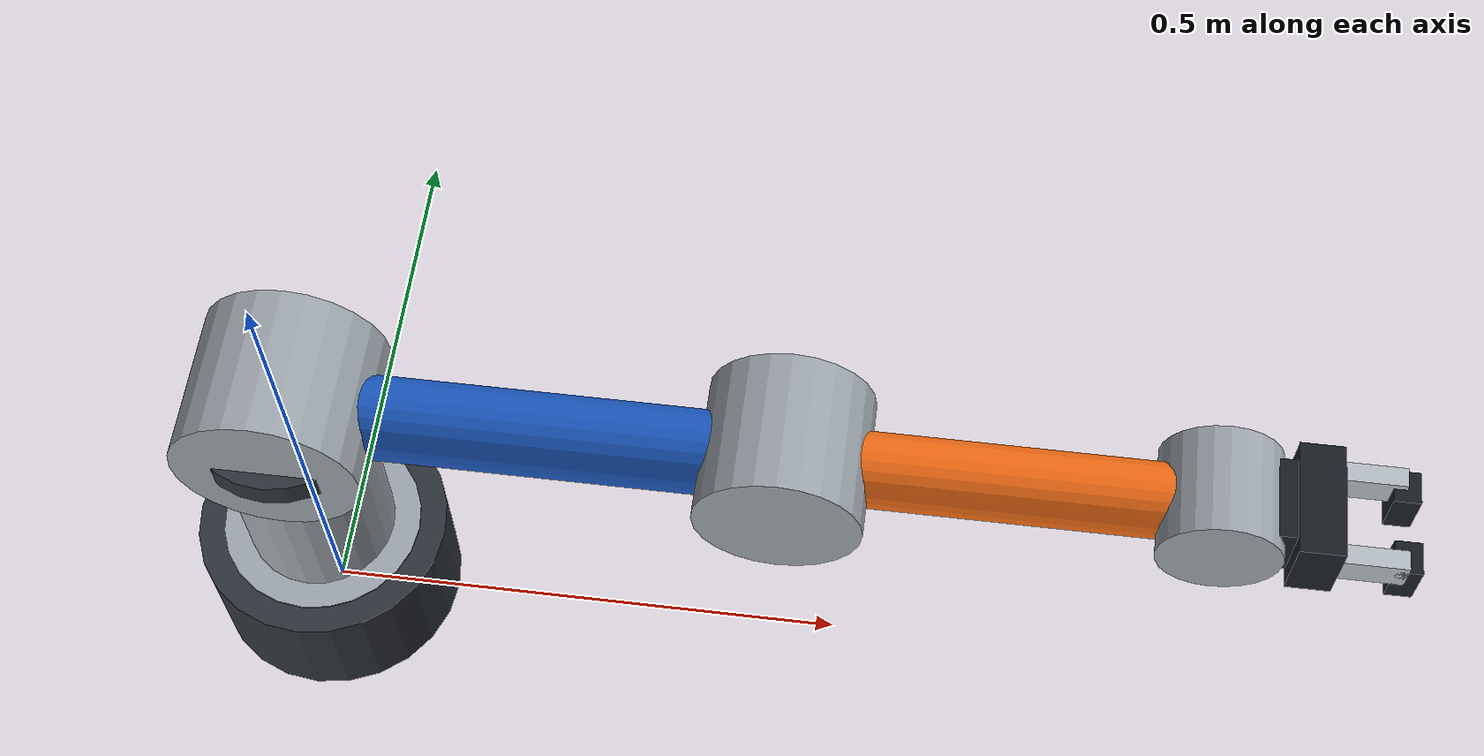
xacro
<?xml version="1.0"?>
<robot name="pp_two_link_gripper_effort" xmlns:xacro="http://www.ros.org/wiki/xacro">
  <xacro:arg name="prefix" default="arm1_"/>
  <xacro:arg name="namespace" default="arm1"/>
  <xacro:arg name="controller_config" default=""/>

  <xacro:include filename="$(find pp_two_link_factory)/urdf/pp_two_link_gripper_macro.xacro"/>
  <xacro:pp_two_link_gripper prefix="$(arg prefix)"/>

  <ros2_control name="$(arg prefix)GazeboEffortSystem" type="system">
    <hardware>
      <plugin>gz_ros2_control/GazeboSimSystem</plugin>
    </hardware>
    <joint name="$(arg prefix)joint1">
      <command_interface name="effort">
        <param name="min">-15.0</param>
        <param name="max">15.0</param>
      </command_interface>
      <state_interface name="position"><param name="initial_value">0.0</param></state_interface>
      <state_interface name="velocity"/>
      <state_interface name="effort"/>
    </joint>
    <joint name="$(arg prefix)joint2">
      <command_interface name="effort">
        <param name="min">-10.0</param>
        <param name="max">10.0</param>
      </command_interface>
      <state_interface name="position"><param name="initial_value">0.0</param></state_interface>
      <state_interface name="velocity"/>
      <state_interface name="effort"/>
    </joint>
  </ros2_control>

  <gazebo>
    <plugin filename="gz_ros2_control-system" name="gz_ros2_control::GazeboSimROS2ControlPlugin">
      <parameters>$(arg controller_config)</parameters>
      <ros><namespace>/$(arg namespace)</namespace></ros>
    </plugin>
  </gazebo>
</robot>

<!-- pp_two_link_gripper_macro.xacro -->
<robot xmlns:xacro="http://www.ros.org/wiki/xacro">
  <material name="pp_dark"><color rgba="0.18 0.20 0.23 1.0"/></material>
  <material name="pp_gray"><color rgba="0.62 0.65 0.68 1.0"/></material>
  <material name="pp_blue"><color rgba="0.10 0.34 0.74 1.0"/></material>
  <material name="pp_orange"><color rgba="0.95 0.42 0.08 1.0"/></material>
  <material name="pp_gripper"><color rgba="0.10 0.12 0.14 1.0"/></material>
  <material name="pp_finger"><color rgba="0.72 0.75 0.78 1.0"/></material>

  <xacro:macro name="pp_two_link_gripper" params="prefix">
    <link name="world"/>
    <joint name="${prefix}world_fixed" type="fixed">
      <origin xyz="0 0 0" rpy="0 0 0"/>
      <parent link="world"/>
      <child link="${prefix}base_link"/>
    </joint>

    <link name="${prefix}base_link">
      <visual>
        <origin xyz="0 0 0.06" rpy="0 0 0"/>
        <geometry><cylinder radius="0.12" length="0.12"/></geometry>
        <material name="pp_dark"/>
      </visual>
      <visual>
        <origin xyz="0 0 0.116" rpy="0 0 0"/>
        <geometry><cylinder radius="0.095" length="0.012"/></geometry>
        <material name="pp_gray"/>
      </visual>
      <collision>
        <origin xyz="0 0 0.06" rpy="0 0 0"/>
        <geometry><cylinder radius="0.12" length="0.12"/></geometry>
      </collision>
      <inertial>
        <origin xyz="0 0 0.06" rpy="0 0 0"/>
        <mass value="2.0"/>
        <inertia ixx="0.0096" ixy="0.0" ixz="0.0" iyy="0.0096" iyz="0.0" izz="0.0144"/>
      </inertial>
    </link>

    <joint name="${prefix}base_to_shoulder_support" type="fixed">
      <parent link="${prefix}base_link"/>
      <child link="${prefix}shoulder_support"/>
      <origin xyz="0 0 0.12" rpy="0 0 0"/>
    </joint>

    <link name="${prefix}shoulder_support">
      <visual>
        <origin xyz="0 0 0.11" rpy="0 0 0"/>
        <geometry><cylinder radius="0.070" length="0.22"/></geometry>
        <material name="pp_gray"/>
      </visual>
      <visual>
        <origin xyz="0 0 0.213" rpy="0 0 0"/>
        <geometry><cylinder radius="0.085" length="0.026"/></geometry>
        <material name="pp_dark"/>
      </visual>
      <collision>
        <origin xyz="0 0 0.11" rpy="0 0 0"/>
        <geometry><cylinder radius="0.070" length="0.22"/></geometry>
      </collision>
      <inertial>
        <origin xyz="0 0 0.11" rpy="0 0 0"/>
        <mass value="0.8"/>
        <inertia ixx="0.0036" ixy="0.0" ixz="0.0" iyy="0.0036" iyz="0.0" izz="0.0020"/>
      </inertial>
    </link>

    <joint name="${prefix}joint1" type="revolute">
      <parent link="${prefix}shoulder_support"/>
      <child link="${prefix}upper_arm"/>
      <origin xyz="0 0 0.22" rpy="0 0 0"/>
      <axis xyz="0 1 0"/>
      <limit lower="-3.14159" upper="3.14159" effort="15.0" velocity="8.0"/>
      <dynamics damping="0.02" friction="0.0"/>
    </joint>

    <link name="${prefix}upper_arm">
      <visual>
        <origin xyz="0 0 0" rpy="1.5708 0 0"/>
        <geometry><cylinder radius="0.085" length="0.14"/></geometry>
        <material name="pp_gray"/>
      </visual>
      <collision>
        <origin xyz="0 0 0" rpy="1.5708 0 0"/>
        <geometry><cylinder radius="0.085" length="0.14"/></geometry>
      </collision>
      <visual>
        <origin xyz="0.225 0 0" rpy="0 1.5708 0"/>
        <geometry><cylinder radius="0.038" length="0.45"/></geometry>
        <material name="pp_blue"/>
      </visual>
      <collision>
        <origin xyz="0.225 0 0" rpy="0 1.5708 0"/>
        <geometry><cylinder radius="0.038" length="0.45"/></geometry>
      </collision>
      <inertial>
        <origin xyz="0.225 0 0" rpy="0 0 0"/>
        <mass value="6.2"/>
        <inertia ixx="0.031" ixy="0.0" ixz="0.0" iyy="0.403" iyz="0.0" izz="0.403"/>
      </inertial>
    </link>

    <joint name="${prefix}joint2" type="revolute">
      <parent link="${prefix}upper_arm"/>
      <child link="${prefix}forearm"/>
      <origin xyz="0.45 0 0" rpy="0 0 0"/>
      <axis xyz="0 1 0"/>
      <limit lower="-3.14159" upper="3.14159" effort="10.0" velocity="8.0"/>
      <dynamics damping="0.02" friction="0.0"/>
    </joint>

    <link name="${prefix}forearm">
      <visual>
        <origin xyz="0 0 0" rpy="1.5708 0 0"/>
        <geometry><cylinder radius="0.075" length="0.13"/></geometry>
        <material name="pp_gray"/>
      </visual>
      <collision>
        <origin xyz="0 0 0" rpy="1.5708 0 0"/>
        <geometry><cylinder radius="0.075" length="0.13"/></geometry>
      </collision>
      <visual>
        <origin xyz="0.19 0 0" rpy="0 1.5708 0"/>
        <geometry><cylinder radius="0.034" length="0.38"/></geometry>
        <material name="pp_orange"/>
      </visual>
      <collision>
        <origin xyz="0.19 0 0" rpy="0 1.5708 0"/>
        <geometry><cylinder radius="0.034" length="0.38"/></geometry>
      </collision>
      <visual>
        <origin xyz="0.38 0 0" rpy="1.5708 0 0"/>
        <geometry><cylinder radius="0.055" length="0.10"/></geometry>
        <material name="pp_gray"/>
      </visual>
      <collision>
        <origin xyz="0.38 0 0" rpy="1.5708 0 0"/>
        <geometry><cylinder radius="0.055" length="0.10"/></geometry>
      </collision>
      <inertial>
        <origin xyz="0.19 0 0" rpy="0 0 0"/>
        <mass value="3.72"/>
        <inertia ixx="0.0186" ixy="0.0" ixz="0.0" iyy="0.155" iyz="0.0" izz="0.155"/>
      </inertial>
    </link>

    <joint name="${prefix}forearm_to_ee" type="fixed">
      <parent link="${prefix}forearm"/>
      <child link="${prefix}ee_link"/>
      <origin xyz="0.38 0 0" rpy="0 0 0"/>
    </joint>

    <link name="${prefix}ee_link">
      <!-- Short wrist connector -->
      <visual>
        <origin xyz="0.025 0 0" rpy="0 1.5708 0"/>
        <geometry><cylinder radius="0.026" length="0.05"/></geometry>
        <material name="pp_dark"/>
      </visual>
      <collision>
        <origin xyz="0.025 0 0" rpy="0 1.5708 0"/>
        <geometry><cylinder radius="0.026" length="0.05"/></geometry>
      </collision>

      <!-- Compact fixed two-finger gripper: visual-only, no extra DOF. -->
      <visual name="gripper_adapter">
        <origin xyz="0.055 0 0" rpy="0 0 0"/>
        <geometry><box size="0.030 0.075 0.060"/></geometry>
        <material name="pp_gripper"/>
      </visual>
      <visual name="gripper_palm">
        <origin xyz="0.082 0 0" rpy="0 0 0"/>
        <geometry><box size="0.040 0.105 0.070"/></geometry>
        <material name="pp_gripper"/>
      </visual>
      <visual name="gripper_left_finger">
        <origin xyz="0.125 0.040 0" rpy="0 0 0"/>
        <geometry><box size="0.070 0.018 0.030"/></geometry>
        <material name="pp_finger"/>
      </visual>
      <visual name="gripper_right_finger">
        <origin xyz="0.125 -0.040 0" rpy="0 0 0"/>
        <geometry><box size="0.070 0.018 0.030"/></geometry>
        <material name="pp_finger"/>
      </visual>
      <visual name="gripper_left_tip">
        <origin xyz="0.160 0.034 -0.014" rpy="0 0 0"/>
        <geometry><box size="0.024 0.030 0.045"/></geometry>
        <material name="pp_gripper"/>
      </visual>
      <visual name="gripper_right_tip">
        <origin xyz="0.160 -0.034 -0.014" rpy="0 0 0"/>
        <geometry><box size="0.024 0.030 0.045"/></geometry>
        <material name="pp_gripper"/>
      </visual>

      <inertial>
        <origin xyz="0.04 0 0" rpy="0 0 0"/>
        <mass value="0.155"/>
        <inertia ixx="0.000248" ixy="0.0" ixz="0.0" iyy="0.000248" iyz="0.0" izz="0.000248"/>
      </inertial>
    </link>

    <gazebo reference="${prefix}base_link"><material>Gazebo/DarkGrey</material><gravity>false</gravity></gazebo>
    <gazebo reference="${prefix}shoulder_support"><material>Gazebo/Grey</material><gravity>false</gravity></gazebo>
    <gazebo reference="${prefix}upper_arm"><material>Gazebo/Blue</material><gravity>false</gravity></gazebo>
    <gazebo reference="${prefix}forearm"><material>Gazebo/Orange</material><gravity>false</gravity></gazebo>
    <gazebo reference="${prefix}ee_link"><material>Gazebo/DarkGrey</material><gravity>false</gravity></gazebo>
  </xacro:macro>
</robot>
